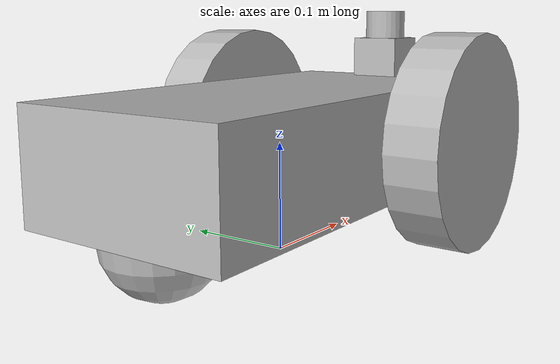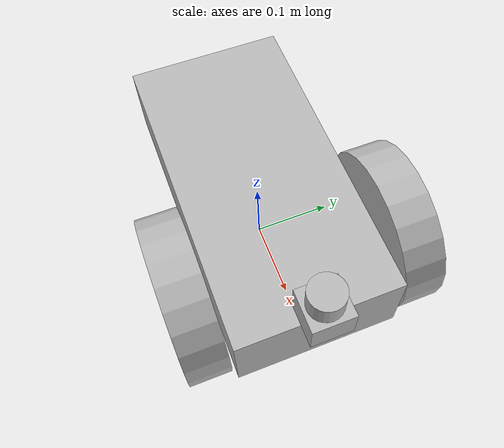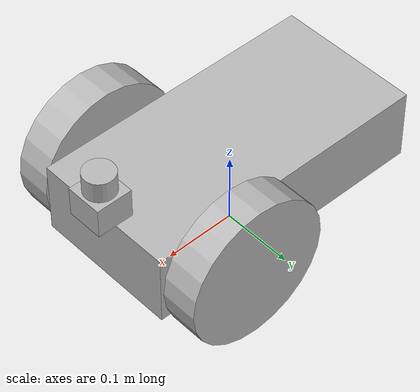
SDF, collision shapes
<?xml version='1.0'?>
    <sdf version='1.4'>
      <model name="my_robot">
        <static>false</static>
        <link name='chassis'>
          <pose>0 0 .1 0 0 0</pose>
          <collision name='collision'>
            <geometry>
              <box>
                <size>.4 .2 .1</size>
              </box>
            </geometry>
          </collision>

          <visual name='visual'>
            <geometry>
              <box>
                <size>.4 .2 .1</size>
              </box>
            </geometry>
          </visual>

          <collision name='caster_collision'>
            <pose>-0.15 0 -0.05 0 0 0</pose>
            <geometry>
              <sphere>
              <radius>.05</radius>
            </sphere>
          </geometry>

          <surface>
            <friction>
              <ode>
                <mu>0</mu>
                <mu2>0</mu2>
                <slip1>1.0</slip1>
                <slip2>1.0</slip2>
              </ode>
            </friction>
          </surface>
        </collision>

        <visual name='caster_visual'>
          <pose>-0.15 0 -0.05 0 0 0</pose>
          <geometry>
            <sphere>
              <radius>.05</radius>
            </sphere>
          </geometry>
        </visual>
      </link>
      <link name="left_wheel">
        <pose>0.1 0.13 0.1 0 1.5707 1.5707</pose>
        <collision name="collision">
          <geometry>
            <cylinder>
              <radius>.1</radius>
              <length>.05</length>
            </cylinder>
          </geometry>
        </collision>
        <visual name="visual">
          <geometry>
            <cylinder>
              <radius>.1</radius>
              <length>.05</length>
            </cylinder>
          </geometry>
        </visual>
      </link>
 <link name="right_wheel">
        <pose>0.1 -0.13 0.1 0 1.5707 1.5707</pose>
        <collision name="collision">
          <geometry>
            <cylinder>
              <radius>.1</radius>
              <length>.05</length>
            </cylinder>
          </geometry>
        </collision>
        <visual name="visual">
          <geometry>
            <cylinder>
              <radius>.1</radius>
              <length>.05</length>
            </cylinder>
          </geometry>
        </visual>
      </link>

    <!-- Add the laser range finder -->
       <link name="laser_link">
         <inertial>
           <!-- Mass of the laser range finder in kg -->
           <mass>0.1</mass>
         </inertial>
         <!-- Position is towards the front of the robot -->
         <!-- Laser finder is mounted on top -->
         <pose>0.2 0 0.185 0 0 0</pose>

         <!-- Add a mesh to make it more visually appealing -->
         <visual name="visual">
           <geometry>
             <mesh>
               <uri>model://hokuyo/meshes/hokuyo.dae</uri>
             </mesh>
           </geometry>
         </visual>

         <!-- Collision properties of the base of the laser range finder-->
         <collision name="collision-base">
           <pose>0 0 -0.0145 0 0 0</pose>
           <geometry>
             <box>
               <size>0.05 0.05 0.041</size>
             </box>
           </geometry>
         </collision>
         <!-- Collision properties of the top of the laser range finder-->
         <collision name="collision-top">
           <pose>0 0 0.0205 0 0 0</pose>
           <geometry>
             <cylinder>
               <radius>0.021</radius>
               <length>0.029</length>
             </cylinder>
           </geometry>
         </collision>

         <!-- Describes the type and properties of the sensor -->
	 <sensor name="laser" type="ray">
	   <pose>0.01 0 0.0175 0 -0 0</pose>
           <ray>
             <scan>
               <horizontal>
                 <samples>181</samples>
                 <resolution>1</resolution>
                 <min_angle>-1.57080</min_angle>
                 <max_angle>1.57080</max_angle>
               </horizontal>
             </scan>
             <range>
               <min>0.08</min>
               <max>10</max>
               <resolution>0.05</resolution>
             </range>
           </ray>
           <always_on>1</always_on>
           <update_rate>10</update_rate>
           <visualize>true</visualize>

           <plugin name='laser' filename='libgazebo_ros_ray_sensor.so'>
             <ros>
               <namespace>/demo</namespace>
               <argument>--ros-args --remap ~/out:=scan</argument>
             </ros>
             <output_type>sensor_msgs/LaserScan</output_type>
           </plugin>
	 </sensor>
       </link>

       <!-- Connect laser range finder to the robot's body -->
       <joint type="fixed" name="laser_joint">
         <child>laser_link</child>
         <parent>chassis</parent>
       </joint>

       <joint type="revolute" name="left_wheel_hinge">
         <pose>0 0 -0.03 0 0 0</pose>
         <child>left_wheel</child>
         <parent>chassis</parent>
         <axis>
           <xyz>0 1 0</xyz>
         </axis>
       </joint>

       <!-- Add motor for the right wheel -->
       <joint type="revolute" name="right_wheel_hinge">
         <pose>0 0 0.03 0 0 0</pose>
         <child>right_wheel</child>
         <parent>chassis</parent>
         <axis>
           <xyz>0 1 0</xyz>
         </axis>
       </joint>

       <!-- Controls the differential drive robot -->
       <plugin name='diff_drive' filename='libgazebo_ros_diff_drive.so'>
         <ros>
           <namespace>/demo</namespace>
           <remapping>cmd_vel:=cmd_vel</remapping>
           <remapping>odom:=odom</remapping>
         </ros>

         <!-- wheels -->
         <left_joint>left_wheel_hinge</left_joint>
         <right_joint>right_wheel_hinge</right_joint>

         <!-- kinematics -->
         <wheel_separation>0.26</wheel_separation>
         <wheel_diameter>0.2</wheel_diameter>

         <!-- limits -->
         <max_wheel_torque>20</max_wheel_torque>
         <max_wheel_acceleration>1.0</max_wheel_acceleration>

         <!-- output -->
         <publish_odom>true</publish_odom>
         <publish_odom_tf>true</publish_odom_tf>
         <publish_wheel_tf>true</publish_wheel_tf>

         <odometry_frame>odom</odometry_frame>
         <robot_base_frame>chassis</robot_base_frame>
       </plugin>

 </model>
    </sdf>
